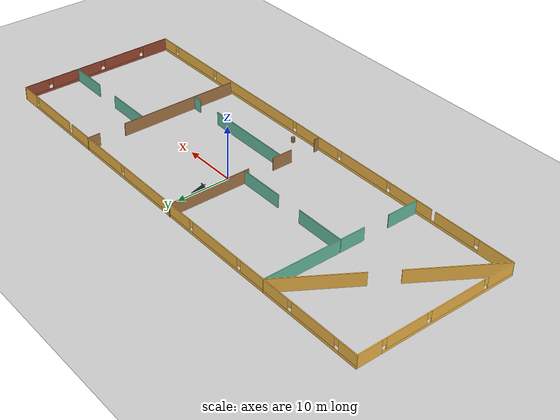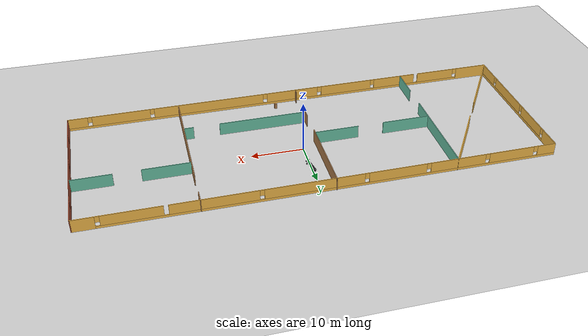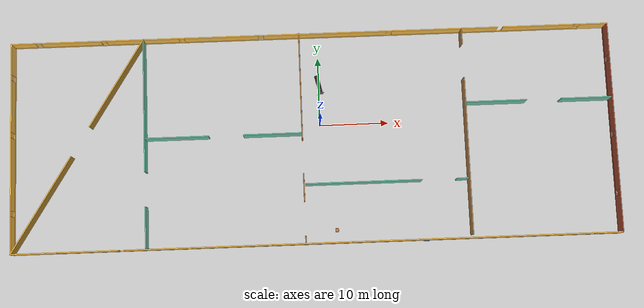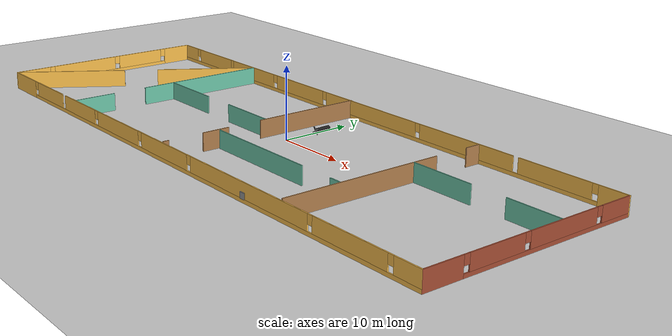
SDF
<sdf version="1.6">
 <world name="default">
  <model name="ground_plane">
   <static>1</static>
   <link name="link">
    <collision name="collision">
     <geometry><plane><normal>0 0 1</normal><size>100 100</size></plane></geometry>
     <surface><friction><ode><mu>100</mu><mu2>50</mu2></ode></friction></surface>
    </collision>
    <visual name="visual">
     <cast_shadows>0</cast_shadows>
     <geometry><plane><normal>0 0 1</normal><size>100 100</size></plane></geometry>
     <material>
      <script><uri>file://media/materials/scripts/gazebo.material</uri><name>Gazebo/Grey</name></script>
     </material>
    </visual>
   </link>
  </model>
  <model name="Building_0">
   <pose>-1.0762 -1.9803 0 0 -0 0</pose>
   <link name="Wall_0">
    <pose>-43.6608 -0.039593 0 0 -0 -1.5708</pose>
    <visual name="Wall_0_Visual_0">
     <pose>-13.0828 0 1.25 0 -0 0</pose>
     <geometry><box><size>4.5844 0.15 2.5</size></box></geometry>
     <material>
      <script><uri>file://media/materials/scripts/gazebo.material</uri><name>Gazebo/Grey</name></script>
      <ambient>1 0.764706 0.305882 1</ambient>
     </material>
     <meta><layer>0</layer></meta>
    </visual>
    <collision name="Wall_0_Collision_0">
     <geometry><box><size>4.5844 0.15 2.5</size></box></geometry>
     <pose>-13.0828 0 1.25 0 -0 0</pose>
    </collision>
    <visual name="Wall_0_Visual_1">
     <pose>2.2922 0 0.25 0 -0 0</pose>
     <geometry><box><size>26.1656 0.15 0.5</size></box></geometry>
     <material>
      <script><uri>file://media/materials/scripts/gazebo.material</uri><name>Gazebo/Grey</name></script>
      <ambient>1 0.764706 0.305882 1</ambient>
     </material>
     <meta><layer>0</layer></meta>
    </visual>
    <collision name="Wall_0_Collision_1">
     <geometry><box><size>26.1656 0.15 0.5</size></box></geometry>
     <pose>2.2922 0 0.25 0 -0 0</pose>
    </collision>
    <visual name="Wall_0_Visual_2">
     <pose>-6.1399 0 1.5 0 -0 0</pose>
     <geometry><box><size>7.7014 0.15 2</size></box></geometry>
     <material>
      <script><uri>file://media/materials/scripts/gazebo.material</uri><name>Gazebo/Grey</name></script>
      <ambient>1 0.764706 0.305882 1</ambient>
     </material>
     <meta><layer>0</layer></meta>
    </visual>
    <collision name="Wall_0_Collision_2">
     <geometry><box><size>7.7014 0.15 2</size></box></geometry>
     <pose>-6.1399 0 1.5 0 -0 0</pose>
    </collision>
    <visual name="Wall_0_Visual_3">
     <pose>3.79701 0 1.5 0 -0 0</pose>
     <geometry><box><size>10.5724 0.15 2</size></box></geometry>
     <material>
      <script><uri>file://media/materials/scripts/gazebo.material</uri><name>Gazebo/Grey</name></script>
      <ambient>1 0.764706 0.305882 1</ambient>
     </material>
     <meta><layer>0</layer></meta>
    </visual>
    <collision name="Wall_0_Collision_3">
     <geometry><box><size>10.5724 0.15 2</size></box></geometry>
     <pose>3.79701 0 1.5 0 -0 0</pose>
    </collision>
    <visual name="Wall_0_Visual_4">
     <pose>12.6291 0 1.5 0 -0 0</pose>
     <geometry><box><size>5.49178 0.15 2</size></box></geometry>
     <material>
      <script><uri>file://media/materials/scripts/gazebo.material</uri><name>Gazebo/Grey</name></script>
      <ambient>1 0.764706 0.305882 1</ambient>
     </material>
     <meta><layer>0</layer></meta>
    </visual>
    <collision name="Wall_0_Collision_4">
     <geometry><box><size>5.49178 0.15 2</size></box></geometry>
     <pose>12.6291 0 1.5 0 -0 0</pose>
    </collision>
    <visual name="Wall_0_Visual_5">
     <pose>-10.3906 0 1.9 0 -0 0</pose>
     <geometry><box><size>0.8 0.15 1.2</size></box></geometry>
     <material>
      <script><uri>file://media/materials/scripts/gazebo.material</uri><name>Gazebo/Grey</name></script>
      <ambient>1 0.764706 0.305882 1</ambient>
     </material>
     <meta><layer>0</layer></meta>
    </visual>
    <collision name="Wall_0_Collision_5">
     <geometry><box><size>0.8 0.15 1.2</size></box></geometry>
     <pose>-10.3906 0 1.9 0 -0 0</pose>
    </collision>
    <visual name="Wall_0_Visual_6">
     <pose>-1.8892 0 1.9 0 -0 0</pose>
     <geometry><box><size>0.8 0.15 1.2</size></box></geometry>
     <material>
      <script><uri>file://media/materials/scripts/gazebo.material</uri><name>Gazebo/Grey</name></script>
      <ambient>1 0.764706 0.305882 1</ambient>
     </material>
     <meta><layer>0</layer></meta>
    </visual>
    <collision name="Wall_0_Collision_6">
     <geometry><box><size>0.8 0.15 1.2</size></box></geometry>
     <pose>-1.8892 0 1.9 0 -0 0</pose>
    </collision>
    <visual name="Wall_0_Visual_7">
     <pose>9.48322 0 1.9 0 -0 0</pose>
     <geometry><box><size>0.8 0.15 1.2</size></box></geometry>
     <material>
      <script><uri>file://media/materials/scripts/gazebo.material</uri><name>Gazebo/Grey</name></script>
      <ambient>1 0.764706 0.305882 1</ambient>
     </material>
     <meta><layer>0</layer></meta>
    </visual>
    <collision name="Wall_0_Collision_7">
     <geometry><box><size>0.8 0.15 1.2</size></box></geometry>
     <pose>9.48322 0 1.9 0 -0 0</pose>
    </collision>
   </link>
   <link name="Wall_1">
    <pose>0.014212 -15.3396 0 0 -0 0</pose>
    <visual name="Wall_1_Visual_0">
     <pose>-40.4458 0 1.25 0 -0 0</pose>
     <geometry><box><size>6.6085 0.15 2.5</size></box></geometry>
     <material>
      <script><uri>file://media/materials/scripts/gazebo.material</uri><name>Gazebo/Grey</name></script>
      <ambient>1 0.764706 0.305882 1</ambient>
     </material>
     <meta><layer>0</layer></meta>
    </visual>
    <collision name="Wall_1_Collision_0">
     <geometry><box><size>6.6085 0.15 2.5</size></box></geometry>
     <pose>-40.4458 0 1.25 0 -0 0</pose>
    </collision>
    <visual name="Wall_1_Visual_1">
     <pose>3.30425 0 0.25 0 -0 0</pose>
     <geometry><box><size>80.8915 0.15 0.5</size></box></geometry>
     <material>
      <script><uri>file://media/materials/scripts/gazebo.material</uri><name>Gazebo/Grey</name></script>
      <ambient>1 0.764706 0.305882 1</ambient>
     </material>
     <meta><layer>0</layer></meta>
    </visual>
    <collision name="Wall_1_Collision_1">
     <geometry><box><size>80.8915 0.15 0.5</size></box></geometry>
     <pose>3.30425 0 0.25 0 -0 0</pose>
    </collision>
    <visual name="Wall_1_Visual_2">
     <pose>-32.3294 0 1.5 0 -0 0</pose>
     <geometry><box><size>8.02424 0.15 2</size></box></geometry>
     <material>
      <script><uri>file://media/materials/scripts/gazebo.material</uri><name>Gazebo/Grey</name></script>
      <ambient>1 0.764706 0.305882 1</ambient>
     </material>
     <meta><layer>0</layer></meta>
    </visual>
    <collision name="Wall_1_Collision_2">
     <geometry><box><size>8.02424 0.15 2</size></box></geometry>
     <pose>-32.3294 0 1.5 0 -0 0</pose>
    </collision>
    <visual name="Wall_1_Visual_3">
     <pose>-23.0747 0 1.5 0 -0 0</pose>
     <geometry><box><size>8.88514 0.15 2</size></box></geometry>
     <material>
      <script><uri>file://media/materials/scripts/gazebo.material</uri><name>Gazebo/Grey</name></script>
      <ambient>1 0.764706 0.305882 1</ambient>
     </material>
     <meta><layer>0</layer></meta>
    </visual>
    <collision name="Wall_1_Collision_3">
     <geometry><box><size>8.88514 0.15 2</size></box></geometry>
     <pose>-23.0747 0 1.5 0 -0 0</pose>
    </collision>
    <visual name="Wall_1_Visual_4">
     <pose>-12.4749 0 1.5 0 -0 0</pose>
     <geometry><box><size>10.7146 0.15 2</size></box></geometry>
     <material>
      <script><uri>file://media/materials/scripts/gazebo.material</uri><name>Gazebo/Grey</name></script>
      <ambient>1 0.764706 0.305882 1</ambient>
     </material>
     <meta><layer>0</layer></meta>
    </visual>
    <collision name="Wall_1_Collision_4">
     <geometry><box><size>10.7146 0.15 2</size></box></geometry>
     <pose>-12.4749 0 1.5 0 -0 0</pose>
    </collision>
    <visual name="Wall_1_Visual_5">
     <pose>-1.01411 0 1.5 0 -0 0</pose>
     <geometry><box><size>10.6069 0.15 2</size></box></geometry>
     <material>
      <script><uri>file://media/materials/scripts/gazebo.material</uri><name>Gazebo/Grey</name></script>
      <ambient>1 0.764706 0.305882 1</ambient>
     </material>
     <meta><layer>0</layer></meta>
    </visual>
    <collision name="Wall_1_Collision_5">
     <geometry><box><size>10.6069 0.15 2</size></box></geometry>
     <pose>-1.01411 0 1.5 0 -0 0</pose>
    </collision>
    <visual name="Wall_1_Visual_6">
     <pose>16.0963 0 1.5 0 -0 0</pose>
     <geometry><box><size>22.0139 0.15 2</size></box></geometry>
     <material>
      <script><uri>file://media/materials/scripts/gazebo.material</uri><name>Gazebo/Grey</name></script>
      <ambient>1 0.764706 0.305882 1</ambient>
     </material>
     <meta><layer>0</layer></meta>
    </visual>
    <collision name="Wall_1_Collision_6">
     <geometry><box><size>22.0139 0.15 2</size></box></geometry>
     <pose>16.0963 0 1.5 0 -0 0</pose>
    </collision>
    <visual name="Wall_1_Visual_7">
     <pose>33.5296 0 1.5 0 -0 0</pose>
     <geometry><box><size>11.2526 0.15 2</size></box></geometry>
     <material>
      <script><uri>file://media/materials/scripts/gazebo.material</uri><name>Gazebo/Grey</name></script>
      <ambient>1 0.764706 0.305882 1</ambient>
     </material>
     <meta><layer>0</layer></meta>
    </visual>
    <collision name="Wall_1_Collision_7">
     <geometry><box><size>11.2526 0.15 2</size></box></geometry>
     <pose>33.5296 0 1.5 0 -0 0</pose>
    </collision>
    <visual name="Wall_1_Visual_8">
     <pose>41.8529 0 1.5 0 -0 0</pose>
     <geometry><box><size>3.79414 0.15 2</size></box></geometry>
     <material>
      <script><uri>file://media/materials/scripts/gazebo.material</uri><name>Gazebo/Grey</name></script>
      <ambient>1 0.764706 0.305882 1</ambient>
     </material>
     <meta><layer>0</layer></meta>
    </visual>
    <collision name="Wall_1_Collision_8">
     <geometry><box><size>3.79414 0.15 2</size></box></geometry>
     <pose>41.8529 0 1.5 0 -0 0</pose>
    </collision>
    <visual name="Wall_1_Visual_9">
     <pose>-36.7415 0 1.9 0 -0 0</pose>
     <geometry><box><size>0.8 0.15 1.2</size></box></geometry>
     <material>
      <script><uri>file://media/materials/scripts/gazebo.material</uri><name>Gazebo/Grey</name></script>
      <ambient>1 0.764706 0.305882 1</ambient>
     </material>
     <meta><layer>0</layer></meta>
    </visual>
    <collision name="Wall_1_Collision_9">
     <geometry><box><size>0.8 0.15 1.2</size></box></geometry>
     <pose>-36.7415 0 1.9 0 -0 0</pose>
    </collision>
    <visual name="Wall_1_Visual_10">
     <pose>-28.3173 0 1.9 0 -0 0</pose>
     <geometry><box><size>0.001 0.15 1.2</size></box></geometry>
     <material>
      <script><uri>file://media/materials/scripts/gazebo.material</uri><name>Gazebo/Grey</name></script>
      <ambient>1 0.764706 0.305882 1</ambient>
     </material>
     <meta><layer>0</layer></meta>
    </visual>
    <collision name="Wall_1_Collision_10">
     <geometry><box><size>0.001 0.15 1.2</size></box></geometry>
     <pose>-28.3173 0 1.9 0 -0 0</pose>
    </collision>
    <visual name="Wall_1_Visual_11">
     <pose>-18.2321 0 1.9 0 -0 0</pose>
     <geometry><box><size>0.8 0.15 1.2</size></box></geometry>
     <material>
      <script><uri>file://media/materials/scripts/gazebo.material</uri><name>Gazebo/Grey</name></script>
      <ambient>1 0.764706 0.305882 1</ambient>
     </material>
     <meta><layer>0</layer></meta>
    </visual>
    <collision name="Wall_1_Collision_11">
     <geometry><box><size>0.8 0.15 1.2</size></box></geometry>
     <pose>-18.2321 0 1.9 0 -0 0</pose>
    </collision>
    <visual name="Wall_1_Visual_12">
     <pose>-6.71758 0 1.9 0 -0 0</pose>
     <geometry><box><size>0.8 0.15 1.2</size></box></geometry>
     <material>
      <script><uri>file://media/materials/scripts/gazebo.material</uri><name>Gazebo/Grey</name></script>
      <ambient>1 0.764706 0.305882 1</ambient>
     </material>
     <meta><layer>0</layer></meta>
    </visual>
    <collision name="Wall_1_Collision_12">
     <geometry><box><size>0.8 0.15 1.2</size></box></geometry>
     <pose>-6.71758 0 1.9 0 -0 0</pose>
    </collision>
    <visual name="Wall_1_Visual_13">
     <pose>4.68936 0 1.9 0 -0 0</pose>
     <geometry><box><size>0.8 0.15 1.2</size></box></geometry>
     <material>
      <script><uri>file://media/materials/scripts/gazebo.material</uri><name>Gazebo/Grey</name></script>
      <ambient>1 0.764706 0.305882 1</ambient>
     </material>
     <meta><layer>0</layer></meta>
    </visual>
    <collision name="Wall_1_Collision_13">
     <geometry><box><size>0.8 0.15 1.2</size></box></geometry>
     <pose>4.68936 0 1.9 0 -0 0</pose>
    </collision>
    <visual name="Wall_1_Visual_14">
     <pose>27.5032 0 1.9 0 -0 0</pose>
     <geometry><box><size>0.8 0.15 1.2</size></box></geometry>
     <material>
      <script><uri>file://media/materials/scripts/gazebo.material</uri><name>Gazebo/Grey</name></script>
      <ambient>1 0.764706 0.305882 1</ambient>
     </material>
     <meta><layer>0</layer></meta>
    </visual>
    <collision name="Wall_1_Collision_14">
     <geometry><box><size>0.8 0.15 1.2</size></box></geometry>
     <pose>27.5032 0 1.9 0 -0 0</pose>
    </collision>
    <visual name="Wall_1_Visual_15">
     <pose>39.5559 0 1.9 0 -0 0</pose>
     <geometry><box><size>0.8 0.15 1.2</size></box></geometry>
     <material>
      <script><uri>file://media/materials/scripts/gazebo.material</uri><name>Gazebo/Grey</name></script>
      <ambient>1 0.764706 0.305882 1</ambient>
     </material>
     <meta><layer>0</layer></meta>
    </visual>
    <collision name="Wall_1_Collision_15">
     <geometry><box><size>0.8 0.15 1.2</size></box></geometry>
     <pose>39.5559 0 1.9 0 -0 0</pose>
    </collision>
   </link>
   <link name="Wall_11">
    <pose>32.9634 4.28392 0 0 -0 0</pose>
    <visual name="Wall_11_Visual_0">
     <pose>-6.17941 0 1.25 0 -0 0</pose>
     <geometry><box><size>8.89118 0.15 2.5</size></box></geometry>
     <material>
      <script><uri>file://media/materials/scripts/gazebo.material</uri><name>Gazebo/Grey</name></script>
      <ambient>0.435294 0.796078 0.67451 1</ambient>
     </material>
     <meta><layer>0</layer></meta>
    </visual>
    <collision name="Wall_11_Collision_0">
     <geometry><box><size>8.89118 0.15 2.5</size></box></geometry>
     <pose>-6.17941 0 1.25 0 -0 0</pose>
    </collision>
    <visual name="Wall_11_Visual_1">
     <pose>6.94559 0 1.25 0 -0 0</pose>
     <geometry><box><size>7.35882 0.15 2.5</size></box></geometry>
     <material>
      <script><uri>file://media/materials/scripts/gazebo.material</uri><name>Gazebo/Grey</name></script>
      <ambient>0.435294 0.796078 0.67451 1</ambient>
     </material>
     <meta><layer>0</layer></meta>
    </visual>
    <collision name="Wall_11_Collision_1">
     <geometry><box><size>7.35882 0.15 2.5</size></box></geometry>
     <pose>6.94559 0 1.25 0 -0 0</pose>
    </collision>
   </link>
   <link name="Wall_13">
    <pose>10.4155 -6.80018 0 0 -0 3.14159</pose>
    <visual name="Wall_13_Visual_0">
     <pose>-10.8926 0 1.25 0 -0 0</pose>
     <geometry><box><size>1.71481 0.15 2.5</size></box></geometry>
     <material>
      <script><uri>file://media/materials/scripts/gazebo.material</uri><name>Gazebo/Grey</name></script>
      <ambient>0.435294 0.796078 0.67451 1</ambient>
     </material>
     <meta><layer>0</layer></meta>
    </visual>
    <collision name="Wall_13_Collision_0">
     <geometry><box><size>1.71481 0.15 2.5</size></box></geometry>
     <pose>-10.8926 0 1.25 0 -0 0</pose>
    </collision>
    <visual name="Wall_13_Visual_1">
     <pose>3.3574 0 1.25 0 -0 0</pose>
     <geometry><box><size>16.7852 0.15 2.5</size></box></geometry>
     <material>
      <script><uri>file://media/materials/scripts/gazebo.material</uri><name>Gazebo/Grey</name></script>
      <ambient>0.435294 0.796078 0.67451 1</ambient>
     </material>
     <meta><layer>0</layer></meta>
    </visual>
    <collision name="Wall_13_Collision_1">
     <geometry><box><size>16.7852 0.15 2.5</size></box></geometry>
     <pose>3.3574 0 1.25 0 -0 0</pose>
    </collision>
   </link>
   <link name="Wall_15">
    <pose>-13.0981 0.625087 0 0 -0 0</pose>
    <visual name="Wall_15_Visual_0">
     <pose>-6.69571 0 1.25 0 -0 0</pose>
     <geometry><box><size>9.35858 0.15 2.5</size></box></geometry>
     <material>
      <script><uri>file://media/materials/scripts/gazebo.material</uri><name>Gazebo/Grey</name></script>
      <ambient>0.435294 0.796078 0.67451 1</ambient>
     </material>
     <meta><layer>0</layer></meta>
    </visual>
    <collision name="Wall_15_Collision_0">
     <geometry><box><size>9.35858 0.15 2.5</size></box></geometry>
     <pose>-6.69571 0 1.25 0 -0 0</pose>
    </collision>
    <visual name="Wall_15_Visual_1">
     <pose>7.17929 0 1.25 0 -0 0</pose>
     <geometry><box><size>8.39142 0.15 2.5</size></box></geometry>
     <material>
      <script><uri>file://media/materials/scripts/gazebo.material</uri><name>Gazebo/Grey</name></script>
      <ambient>0.435294 0.796078 0.67451 1</ambient>
     </material>
     <meta><layer>0</layer></meta>
    </visual>
    <collision name="Wall_15_Collision_1">
     <geometry><box><size>8.39142 0.15 2.5</size></box></geometry>
     <pose>7.17929 0 1.25 0 -0 0</pose>
    </collision>
   </link>
   <link name="Wall_17">
    <pose>-34.0295 -0.039593 0 0 -0 1.00897</pose>
    <visual name="Wall_17_Visual_0">
     <pose>-9.99099 0 1.25 0 -0 0</pose>
     <geometry><box><size>16.3262 0.15 2.5</size></box></geometry>
     <material>
      <script><uri>file://media/materials/scripts/gazebo.material</uri><name>Gazebo/Grey</name></script>
      <ambient>1 0.764706 0.305882 1</ambient>
     </material>
     <meta><layer>0</layer></meta>
    </visual>
    <collision name="Wall_17_Collision_0">
     <geometry><box><size>16.3262 0.15 2.5</size></box></geometry>
     <pose>-9.99099 0 1.25 0 -0 0</pose>
    </collision>
    <visual name="Wall_17_Visual_1">
     <pose>10.6631 0 1.25 0 -0 0</pose>
     <geometry><box><size>14.982 0.15 2.5</size></box></geometry>
     <material>
      <script><uri>file://media/materials/scripts/gazebo.material</uri><name>Gazebo/Grey</name></script>
      <ambient>1 0.764706 0.305882 1</ambient>
     </material>
     <meta><layer>0</layer></meta>
    </visual>
    <collision name="Wall_17_Collision_1">
     <geometry><box><size>14.982 0.15 2.5</size></box></geometry>
     <pose>10.6631 0 1.25 0 -0 0</pose>
    </collision>
   </link>
   <link name="Wall_2">
    <pose>43.6892 -0.039593 0 0 -0 1.5708</pose>
    <visual name="Wall_2_Visual_0">
     <pose>-12.6829 0 1.25 0 -0 0</pose>
     <geometry><box><size>5.38417 0.15 2.5</size></box></geometry>
     <material>
      <script><uri>file://media/materials/scripts/gazebo.material</uri><name>Gazebo/Bricks</name></script>
      <ambient>1 1 1 1</ambient>
     </material>
     <meta><layer>0</layer></meta>
    </visual>
    <collision name="Wall_2_Collision_0">
     <geometry><box><size>5.38417 0.15 2.5</size></box></geometry>
     <pose>-12.6829 0 1.25 0 -0 0</pose>
    </collision>
    <visual name="Wall_2_Visual_1">
     <pose>2.69209 0 0.25 0 -0 0</pose>
     <geometry><box><size>25.3658 0.15 0.5</size></box></geometry>
     <material>
      <script><uri>file://media/materials/scripts/gazebo.material</uri><name>Gazebo/Bricks</name></script>
      <ambient>1 1 1 1</ambient>
     </material>
     <meta><layer>0</layer></meta>
    </visual>
    <collision name="Wall_2_Collision_1">
     <geometry><box><size>25.3658 0.15 0.5</size></box></geometry>
     <pose>2.69209 0 0.25 0 -0 0</pose>
    </collision>
    <visual name="Wall_2_Visual_2">
     <pose>-5.28632 0 1.5 0 -0 0</pose>
     <geometry><box><size>7.80901 0.15 2</size></box></geometry>
     <material>
      <script><uri>file://media/materials/scripts/gazebo.material</uri><name>Gazebo/Bricks</name></script>
      <ambient>1 1 1 1</ambient>
     </material>
     <meta><layer>0</layer></meta>
    </visual>
    <collision name="Wall_2_Collision_2">
     <geometry><box><size>7.80901 0.15 2</size></box></geometry>
     <pose>-5.28632 0 1.5 0 -0 0</pose>
    </collision>
    <visual name="Wall_2_Visual_3">
     <pose>4.61404 0 1.5 0 -0 0</pose>
     <geometry><box><size>10.3917 0.15 2</size></box></geometry>
     <material>
      <script><uri>file://media/materials/scripts/gazebo.material</uri><name>Gazebo/Bricks</name></script>
      <ambient>1 1 1 1</ambient>
     </material>
     <meta><layer>0</layer></meta>
    </visual>
    <collision name="Wall_2_Collision_3">
     <geometry><box><size>10.3917 0.15 2</size></box></geometry>
     <pose>4.61404 0 1.5 0 -0 0</pose>
    </collision>
    <visual name="Wall_2_Visual_4">
     <pose>12.9924 0 1.5 0 -0 0</pose>
     <geometry><box><size>4.7651 0.15 2</size></box></geometry>
     <material>
      <script><uri>file://media/materials/scripts/gazebo.material</uri><name>Gazebo/Bricks</name></script>
      <ambient>1 1 1 1</ambient>
     </material>
     <meta><layer>0</layer></meta>
    </visual>
    <collision name="Wall_2_Collision_4">
     <geometry><box><size>4.7651 0.15 2</size></box></geometry>
     <pose>12.9924 0 1.5 0 -0 0</pose>
    </collision>
    <visual name="Wall_2_Visual_5">
     <pose>-9.59083 0 1.9 0 -0 0</pose>
     <geometry><box><size>0.8 0.15 1.2</size></box></geometry>
     <material>
      <script><uri>file://media/materials/scripts/gazebo.material</uri><name>Gazebo/Bricks</name></script>
      <ambient>1 1 1 1</ambient>
     </material>
     <meta><layer>0</layer></meta>
    </visual>
    <collision name="Wall_2_Collision_5">
     <geometry><box><size>0.8 0.15 1.2</size></box></geometry>
     <pose>-9.59083 0 1.9 0 -0 0</pose>
    </collision>
    <visual name="Wall_2_Visual_6">
     <pose>-0.981818 0 1.9 0 -0 0</pose>
     <geometry><box><size>0.8 0.15 1.2</size></box></geometry>
     <material>
      <script><uri>file://media/materials/scripts/gazebo.material</uri><name>Gazebo/Bricks</name></script>
      <ambient>1 1 1 1</ambient>
     </material>
     <meta><layer>0</layer></meta>
    </visual>
    <collision name="Wall_2_Collision_6">
     <geometry><box><size>0.8 0.15 1.2</size></box></geometry>
     <pose>-0.981818 0 1.9 0 -0 0</pose>
    </collision>
    <visual name="Wall_2_Visual_7">
     <pose>10.2099 0 1.9 0 -0 0</pose>
     <geometry><box><size>0.8 0.15 1.2</size></box></geometry>
     <material>
      <script><uri>file://media/materials/scripts/gazebo.material</uri><name>Gazebo/Bricks</name></script>
      <ambient>1 1 1 1</ambient>
     </material>
     <meta><layer>0</layer></meta>
    </visual>
    <collision name="Wall_2_Collision_7">
     <geometry><box><size>0.8 0.15 1.2</size></box></geometry>
     <pose>10.2099 0 1.9 0 -0 0</pose>
    </collision>
   </link>
   <link name="Wall_3">
    <pose>0.014212 15.2604 0 0 -0 3.14159</pose>
    <visual name="Wall_3_Visual_0">
     <pose>-41.7453 0 1.25 0 -0 0</pose>
     <geometry><box><size>4.00936 0.15 2.5</size></box></geometry>
     <material>
      <script><uri>file://media/materials/scripts/gazebo.material</uri><name>Gazebo/Grey</name></script>
      <ambient>1 0.764706 0.305882 1</ambient>
     </material>
     <meta><layer>0</layer></meta>
    </visual>
    <collision name="Wall_3_Collision_0">
     <geometry><box><size>4.00936 0.15 2.5</size></box></geometry>
     <pose>-41.7453 0 1.25 0 -0 0</pose>
    </collision>
    <visual name="Wall_3_Visual_1">
     <pose>2.00468 0 0.25 0 -0 0</pose>
     <geometry><box><size>83.4906 0.15 0.5</size></box></geometry>
     <material>
      <script><uri>file://media/materials/scripts/gazebo.material</uri><name>Gazebo/Grey</name></script>
      <ambient>1 0.764706 0.305882 1</ambient>
     </material>
     <meta><layer>0</layer></meta>
    </visual>
    <collision name="Wall_3_Collision_1">
     <geometry><box><size>83.4906 0.15 0.5</size></box></geometry>
     <pose>2.00468 0 0.25 0 -0 0</pose>
    </collision>
    <visual name="Wall_3_Visual_2">
     <pose>-33.691 0 1.5 0 -0 0</pose>
     <geometry><box><size>10.4993 0.15 2</size></box></geometry>
     <material>
      <script><uri>file://media/materials/scripts/gazebo.material</uri><name>Gazebo/Grey</name></script>
      <ambient>1 0.764706 0.305882 1</ambient>
     </material>
     <meta><layer>0</layer></meta>
    </visual>
    <collision name="Wall_3_Collision_2">
     <geometry><box><size>10.4993 0.15 2</size></box></geometry>
     <pose>-33.691 0 1.5 0 -0 0</pose>
    </collision>
    <visual name="Wall_3_Visual_3">
     <pose>-19.8627 0 1.5 0 -0 0</pose>
     <geometry><box><size>15.5571 0.15 2</size></box></geometry>
     <material>
      <script><uri>file://media/materials/scripts/gazebo.material</uri><name>Gazebo/Grey</name></script>
      <ambient>1 0.764706 0.305882 1</ambient>
     </material>
     <meta><layer>0</layer></meta>
    </visual>
    <collision name="Wall_3_Collision_3">
     <geometry><box><size>15.5571 0.15 2</size></box></geometry>
     <pose>-19.8627 0 1.5 0 -0 0</pose>
    </collision>
    <visual name="Wall_3_Visual_4">
     <pose>-2.25554 0 1.5 0 -0 0</pose>
     <geometry><box><size>18.0573 0.15 2</size></box></geometry>
     <material>
      <script><uri>file://media/materials/scripts/gazebo.material</uri><name>Gazebo/Grey</name></script>
      <ambient>1 0.764706 0.305882 1</ambient>
     </material>
     <meta><layer>0</layer></meta>
    </visual>
    <collision name="Wall_3_Collision_4">
     <geometry><box><size>18.0573 0.15 2</size></box></geometry>
     <pose>-2.25554 0 1.5 0 -0 0</pose>
    </collision>
    <visual name="Wall_3_Visual_5">
     <pose>12.9842 0 1.5 0 -0 0</pose>
     <geometry><box><size>10.8222 0.15 2</size></box></geometry>
     <material>
      <script><uri>file://media/materials/scripts/gazebo.material</uri><name>Gazebo/Grey</name></script>
      <ambient>1 0.764706 0.305882 1</ambient>
     </material>
     <meta><layer>0</layer></meta>
    </visual>
    <collision name="Wall_3_Collision_5">
     <geometry><box><size>10.8222 0.15 2</size></box></geometry>
     <pose>12.9842 0 1.5 0 -0 0</pose>
    </collision>
    <visual name="Wall_3_Visual_6">
     <pose>24.4987 0 1.5 0 -0 0</pose>
     <geometry><box><size>10.6069 0.15 2</size></box></geometry>
     <material>
      <script><uri>file://media/materials/scripts/gazebo.material</uri><name>Gazebo/Grey</name></script>
      <ambient>1 0.764706 0.305882 1</ambient>
     </material>
     <meta><layer>0</layer></meta>
    </visual>
    <collision name="Wall_3_Collision_6">
     <geometry><box><size>10.6069 0.15 2</size></box></geometry>
     <pose>24.4987 0 1.5 0 -0 0</pose>
    </collision>
    <visual name="Wall_3_Visual_7">
     <pose>34.991 0 1.5 0 -0 0</pose>
     <geometry><box><size>8.77752 0.15 2</size></box></geometry>
     <material>
      <script><uri>file://media/materials/scripts/gazebo.material</uri><name>Gazebo/Grey</name></script>
      <ambient>1 0.764706 0.305882 1</ambient>
     </material>
     <meta><layer>0</layer></meta>
    </visual>
    <collision name="Wall_3_Collision_7">
     <geometry><box><size>8.77752 0.15 2</size></box></geometry>
     <pose>34.991 0 1.5 0 -0 0</pose>
    </collision>
    <visual name="Wall_3_Visual_8">
     <pose>41.9649 0 1.5 0 -0 0</pose>
     <geometry><box><size>3.57027 0.15 2</size></box></geometry>
     <material>
      <script><uri>file://media/materials/scripts/gazebo.material</uri><name>Gazebo/Grey</name></script>
      <ambient>1 0.764706 0.305882 1</ambient>
     </material>
     <meta><layer>0</layer></meta>
    </visual>
    <collision name="Wall_3_Collision_8">
     <geometry><box><size>3.57027 0.15 2</size></box></geometry>
     <pose>41.9649 0 1.5 0 -0 0</pose>
    </collision>
    <visual name="Wall_3_Visual_9">
     <pose>-39.3406 0 1.9 0 -0 0</pose>
     <geometry><box><size>0.8 0.15 1.2</size></box></geometry>
     <material>
      <script><uri>file://media/materials/scripts/gazebo.material</uri><name>Gazebo/Grey</name></script>
      <ambient>1 0.764706 0.305882 1</ambient>
     </material>
     <meta><layer>0</layer></meta>
    </visual>
    <collision name="Wall_3_Collision_9">
     <geometry><box><size>0.8 0.15 1.2</size></box></geometry>
     <pose>-39.3406 0 1.9 0 -0 0</pose>
    </collision>
    <visual name="Wall_3_Visual_10">
     <pose>-28.4413 0 1.9 0 -0 0</pose>
     <geometry><box><size>0.001 0.15 1.2</size></box></geometry>
     <material>
      <script><uri>file://media/materials/scripts/gazebo.material</uri><name>Gazebo/Grey</name></script>
      <ambient>1 0.764706 0.305882 1</ambient>
     </material>
     <meta><layer>0</layer></meta>
    </visual>
    <collision name="Wall_3_Collision_10">
     <geometry><box><size>0.001 0.15 1.2</size></box></geometry>
     <pose>-28.4413 0 1.9 0 -0 0</pose>
    </collision>
    <visual name="Wall_3_Visual_11">
     <pose>-11.6842 0 1.9 0 -0 0</pose>
     <geometry><box><size>0.8 0.15 1.2</size></box></geometry>
     <material>
      <script><uri>file://media/materials/scripts/gazebo.material</uri><name>Gazebo/Grey</name></script>
      <ambient>1 0.764706 0.305882 1</ambient>
     </material>
     <meta><layer>0</layer></meta>
    </visual>
    <collision name="Wall_3_Collision_11">
     <geometry><box><size>0.8 0.15 1.2</size></box></geometry>
     <pose>-11.6842 0 1.9 0 -0 0</pose>
    </collision>
    <visual name="Wall_3_Visual_12">
     <pose>7.1731 0 1.9 0 -0 0</pose>
     <geometry><box><size>0.8 0.15 1.2</size></box></geometry>
     <material>
      <script><uri>file://media/materials/scripts/gazebo.material</uri><name>Gazebo/Grey</name></script>
      <ambient>1 0.764706 0.305882 1</ambient>
     </material>
     <meta><layer>0</layer></meta>
    </visual>
    <collision name="Wall_3_Collision_12">
     <geometry><box><size>0.8 0.15 1.2</size></box></geometry>
     <pose>7.1731 0 1.9 0 -0 0</pose>
    </collision>
    <visual name="Wall_3_Visual_13">
     <pose>18.7953 0 1.9 0 -0 0</pose>
     <geometry><box><size>0.8 0.15 1.2</size></box></geometry>
     <material>
      <script><uri>file://media/materials/scripts/gazebo.material</uri><name>Gazebo/Grey</name></script>
      <ambient>1 0.764706 0.305882 1</ambient>
     </material>
     <meta><layer>0</layer></meta>
    </visual>
    <collision name="Wall_3_Collision_13">
     <geometry><box><size>0.8 0.15 1.2</size></box></geometry>
     <pose>18.7953 0 1.9 0 -0 0</pose>
    </collision>
    <visual name="Wall_3_Visual_14">
     <pose>30.2022 0 1.9 0 -0 0</pose>
     <geometry><box><size>0.8 0.15 1.2</size></box></geometry>
     <material>
      <script><uri>file://media/materials/scripts/gazebo.material</uri><name>Gazebo/Grey</name></script>
      <ambient>1 0.764706 0.305882 1</ambient>
     </material>
     <meta><layer>0</layer></meta>
    </visual>
    <collision name="Wall_3_Collision_14">
     <geometry><box><size>0.8 0.15 1.2</size></box></geometry>
     <pose>30.2022 0 1.9 0 -0 0</pose>
    </collision>
    <visual name="Wall_3_Visual_15">
     <pose>39.7797 0 1.9 0 -0 0</pose>
     <geometry><box><size>0.8 0.15 1.2</size></box></geometry>
     <material>
      <script><uri>file://media/materials/scripts/gazebo.material</uri><name>Gazebo/Grey</name></script>
      <ambient>1 0.764706 0.305882 1</ambient>
     </material>
     <meta><layer>0</layer></meta>
    </visual>
    <collision name="Wall_3_Collision_15">
     <geometry><box><size>0.8 0.15 1.2</size></box></geometry>
     <pose>39.7797 0 1.9 0 -0 0</pose>
    </collision>
   </link>
   <link name="Wall_5">
    <pose>-24.3981 0.085406 0 0 -0 -1.5708</pose>
    <visual name="Wall_5_Visual_0">
     <pose>-5.47838 0 1.25 0 -0 0</pose>
     <geometry><box><size>19.5432 0.15 2.5</size></box></geometry>
     <material>
      <script><uri>file://media/materials/scripts/gazebo.material</uri><name>Gazebo/Grey</name></script>
      <ambient>0.435294 0.796078 0.67451 1</ambient>
     </material>
     <meta><layer>0</layer></meta>
    </visual>
    <collision name="Wall_5_Collision_0">
     <geometry><box><size>19.5432 0.15 2.5</size></box></geometry>
     <pose>-5.47838 0 1.25 0 -0 0</pose>
    </collision>
    <visual name="Wall_5_Visual_1">
     <pose>12.2716 0 1.25 0 -0 0</pose>
     <geometry><box><size>5.95676 0.15 2.5</size></box></geometry>
     <material>
      <script><uri>file://media/materials/scripts/gazebo.material</uri><name>Gazebo/Grey</name></script>
      <ambient>0.435294 0.796078 0.67451 1</ambient>
     </material>
     <meta><layer>0</layer></meta>
    </visual>
    <collision name="Wall_5_Collision_1">
     <geometry><box><size>5.95676 0.15 2.5</size></box></geometry>
     <pose>12.2716 0 1.25 0 -0 0</pose>
    </collision>
   </link>
   <link name="Wall_7">
    <pose>-1.58424 0.193019 0 0 -0 -1.5708</pose>
    <visual name="Wall_7_Visual_0">
     <pose>-7.3997 0 1.25 0 -0 0</pose>
     <geometry><box><size>15.7006 0.15 2.5</size></box></geometry>
     <material>
      <script><uri>file://media/materials/scripts/gazebo.material</uri><name>Gazebo/Wood</name></script>
      <ambient>1 1 1 1</ambient>
     </material>
     <meta><layer>0</layer></meta>
    </visual>
    <collision name="Wall_7_Collision_0">
     <geometry><box><size>15.7006 0.15 2.5</size></box></geometry>
     <pose>-7.3997 0 1.25 0 -0 0</pose>
    </collision>
    <visual name="Wall_7_Visual_1">
     <pose>7.42902 0 1.25 0 -0 0</pose>
     <geometry><box><size>3.95685 0.15 2.5</size></box></geometry>
     <material>
      <script><uri>file://media/materials/scripts/gazebo.material</uri><name>Gazebo/Wood</name></script>
      <ambient>1 1 1 1</ambient>
     </material>
     <meta><layer>0</layer></meta>
    </visual>
    <collision name="Wall_7_Collision_1">
     <geometry><box><size>3.95685 0.15 2.5</size></box></geometry>
     <pose>7.42902 0 1.25 0 -0 0</pose>
    </collision>
    <visual name="Wall_7_Visual_2">
     <pose>14.8287 0 1.25 0 -0 0</pose>
     <geometry><box><size>0.842552 0.15 2.5</size></box></geometry>
     <material>
      <script><uri>file://media/materials/scripts/gazebo.material</uri><name>Gazebo/Wood</name></script>
      <ambient>1 1 1 1</ambient>
     </material>
     <meta><layer>0</layer></meta>
    </visual>
    <collision name="Wall_7_Collision_2">
     <geometry><box><size>0.842552 0.15 2.5</size></box></geometry>
     <pose>14.8287 0 1.25 0 -0 0</pose>
    </collision>
   </link>
   <link name="Wall_9">
    <pose>22.3058 0.210406 0 0 -0 -1.5708</pose>
    <visual name="Wall_9_Visual_0">
     <pose>-13.9494 0 1.25 0 -0 0</pose>
     <geometry><box><size>2.35123 0.15 2.5</size></box></geometry>
     <material>
      <script><uri>file://media/materials/scripts/gazebo.material</uri><name>Gazebo/Wood</name></script>
      <ambient>1 1 1 1</ambient>
     </material>
     <meta><layer>0</layer></meta>
    </visual>
    <collision name="Wall_9_Collision_0">
     <geometry><box><size>2.35123 0.15 2.5</size></box></geometry>
     <pose>-13.9494 0 1.25 0 -0 0</pose>
    </collision>
    <visual name="Wall_9_Visual_1">
     <pose>3.67561 0 1.25 0 -0 0</pose>
     <geometry><box><size>22.8988 0.15 2.5</size></box></geometry>
     <material>
      <script><uri>file://media/materials/scripts/gazebo.material</uri><name>Gazebo/Wood</name></script>
      <ambient>1 1 1 1</ambient>
     </material>
     <meta><layer>0</layer></meta>
    </visual>
    <collision name="Wall_9_Collision_1">
     <geometry><box><size>22.8988 0.15 2.5</size></box></geometry>
     <pose>3.67561 0 1.25 0 -0 0</pose>
    </collision>
   </link>
   <link name="Window_13">
    <collision name="Window_13_Collision">
     <geometry><box><size>0.8 0.17 0.8</size></box></geometry>
     <pose>0 0 0.4 0 -0 0</pose>
    </collision>
    <visual name="Window_13_Visual">
     <pose>0 0 0.4 0 -0 0</pose>
     <geometry><box><size>0.8 0.17 0.8</size></box></geometry>
     <material>
      <script><uri>file://media/materials/scripts/gazebo.material</uri><name>Gazebo/Grey</name></script>
     </material>
    </visual>
    <pose>15.7877 -15.4415 0.5 0 -0 0</pose>
   </link>
   <static>1</static>
  </model>
  <model name="submarine_sinking">
   <pose>0.2267 5.03409 0.449056 1.49689 -0.551512 0.257312</pose>
   <link name="body">
    <pose>0 0 -1.07935 0 -0 0</pose>
    <inertial>
     <mass>1102.7</mass>
     <inertia><ixx>645.998</ixx><ixy>0</ixy><ixz>0</ixz><iyy>645.998</iyy><iyz>0</iyz><izz>49.6215</izz></inertia>
    </inertial>
    <visual name="body_visual">
     <geometry><cylinder><radius>0.3</radius><length>2.6</length></cylinder></geometry>
     <material>
      <script><uri>file://media/materials/scripts/gazebo.material</uri><name>Gazebo/Black</name></script>
     </material>
    </visual>
    <collision name="body_collision">
     <geometry><cylinder><radius>0.3</radius><length>2.6</length></cylinder></geometry>
    </collision>
    <visual name="spacer_visual">
     <pose>0 0 1.37855 0 -0 0</pose>
     <geometry><cylinder><radius>0.0933402</radius><length>0.127211</length></cylinder></geometry>
     <material>
      <script><uri>file://media/materials/scripts/gazebo.material</uri><name>Gazebo/Black</name></script>
     </material>
    </visual>
   </link>
   <link name="propeller">
    <pose>0 0 0.3455 3.14159 -0 0</pose>
    <inertial>
     <mass>25.2312</mass>
     <inertia><ixx>0.531907</ixx><ixy>0</ixy><ixz>0</ixz><iyy>0.531907</iyy><iyz>0</iyz><izz>1.0513</izz></inertia>
    </inertial>
    <visual name="blade1_visual">
     <pose>0.34334 0 0 0.785398 -0 0</pose>
     <geometry><box><size>0.5 0.154178 0.05455</size></box></geometry>
     <material>
      <script><uri>file://media/materials/scripts/gazebo.material</uri><name>Gazebo/Black</name></script>
     </material>
    </visual>
    <collision name="blade1_collision">
     <pose>0.34334 0 0 0.785398 -0 0</pose>
     <geometry><box><size>0.5 0.154178 0.05455</size></box></geometry>
    </collision>
    <visual name="blade2_visual">
     <pose>0 0.34334 0 0.785398 0 1.5708</pose>
     <geometry><box><size>0.5 0.154178 0.05455</size></box></geometry>
     <material>
      <script><uri>file://media/materials/scripts/gazebo.material</uri><name>Gazebo/Black</name></script>
     </material>
    </visual>
    <collision name="blade2_collision">
     <pose>0 0.34334 0 0.785398 0 1.5708</pose>
     <geometry><box><size>0.5 0.154178 0.05455</size></box></geometry>
    </collision>
    <visual name="blade3_visual">
     <pose>-0.34334 -0 0 -0.785398 0 0</pose>
     <geometry><box><size>0.5 0.154178 0.05455</size></box></geometry>
     <material>
      <script><uri>file://media/materials/scripts/gazebo.material</uri><name>Gazebo/Black</name></script>
     </material>
    </visual>
    <collision name="blade3_collision">
     <pose>-0.34334 -0 0 -0.785398 0 0</pose>
     <geometry><box><size>0.5 0.154178 0.05455</size></box></geometry>
    </collision>
    <visual name="blade4_visual">
     <pose>-0 -0.34334 0 -0.785398 -0 1.5708</pose>
     <geometry><box><size>0.5 0.154178 0.05455</size></box></geometry>
     <material>
      <script><uri>file://media/materials/scripts/gazebo.material</uri><name>Gazebo/Black</name></script>
     </material>
    </visual>
    <collision name="blade4_collision">
     <pose>-0 -0.34334 0 -0.785398 -0 1.5708</pose>
     <geometry><box><size>0.5 0.154178 0.05455</size></box></geometry>
    </collision>
   </link>
   <joint name="spinning_joint" type="revolute">
    <parent>body</parent>
    <child>propeller</child>
    <axis>
     <xyz>0 0 1</xyz>
     <use_parent_model_frame>1</use_parent_model_frame>
     <limit><lower>-1e+12</lower><upper>1e+12</upper><effort>-1</effort><velocity>-1</velocity></limit>
     <dynamics><spring_reference>0</spring_reference><spring_stiffness>0</spring_stiffness></dynamics>
    </axis>
   </joint>
   <plugin name="buoyancy" filename="libBuoyancyPlugin.so"><fluid_density>999.1026</fluid_density></plugin>
  </model>
  <model name="cabinet_clone_0">
   <static>1</static>
   <link name="cabinet_bottom_plate">
    <inertial>
     <pose>0 0 -1 0 -0 0</pose>
     <inertia><ixx>2.05</ixx><ixy>0</ixy><ixz>0</ixz><iyy>2.05</iyy><iyz>0</iyz><izz>2.05</izz></inertia>
     <mass>25</mass>
    </inertial>
    <collision name="cabinet_bottom_plate_geom">
     <pose>0 0 0.01 0 -0 0</pose>
     <geometry><box><size>0.45 0.45 0.02</size></box></geometry>
    </collision>
    <visual name="cabinet_bottom_plate_geom_visual">
     <pose>0 0 0.01 0 -0 0</pose>
     <geometry><box><size>0.45 0.45 0.02</size></box></geometry>
     <material>
      <script><uri>file://media/materials/scripts/gazebo.material</uri><name>Gazebo/Wood</name></script>
     </material>
    </visual>
    <collision name="cabinet_bottom_plate_geom_cabinet_back_plate">
     <pose>0.235 0 0.51 0 -0 0</pose>
     <geometry><box><size>0.02 0.45 1.02</size></box></geometry>
    </collision>
    <visual name="cabinet_bottom_plate_geom_cabinet_back_plate_visual">
     <pose>0.235 0 0.51 0 -0 0</pose>
     <geometry><box><size>0.02 0.45 1.02</size></box></geometry>
     <material>
      <script><uri>file://media/materials/scripts/gazebo.material</uri><name>Gazebo/Wood</name></script>
     </material>
    </visual>
    <collision name="cabinet_bottom_plate_geom_cabinet_left_plate">
     <pose>0 0.235 0.51 0 -0 0</pose>
     <geometry><box><size>0.45 0.02 1.02</size></box></geometry>
    </collision>
    <visual name="cabinet_bottom_plate_geom_cabinet_left_plate_visual">
     <pose>0 0.235 0.51 0 -0 0</pose>
     <geometry><box><size>0.45 0.02 1.02</size></box></geometry>
     <material>
      <script><uri>file://media/materials/scripts/gazebo.material</uri><name>Gazebo/Wood</name></script>
     </material>
    </visual>
    <collision name="cabinet_bottom_plate_geom_cabinet_middle_plate">
     <pose>0 0 0.51 0 -0 0</pose>
     <geometry><box><size>0.45 0.45 0.02</size></box></geometry>
    </collision>
    <visual name="cabinet_bottom_plate_geom_cabinet_middle_plate_visual">
     <pose>0 0 0.51 0 -0 0</pose>
     <geometry><box><size>0.45 0.45 0.02</size></box></geometry>
     <material>
      <script><uri>file://media/materials/scripts/gazebo.material</uri><name>Gazebo/Wood</name></script>
     </material>
    </visual>
    <collision name="cabinet_bottom_plate_geom_cabinet_right_plate">
     <pose>0 -0.235 0.51 0 -0 0</pose>
     <geometry><box><size>0.45 0.02 1.02</size></box></geometry>
    </collision>
    <visual name="cabinet_bottom_plate_geom_cabinet_right_plate_visual">
     <pose>0 -0.235 0.51 0 -0 0</pose>
     <geometry><box><size>0.45 0.02 1.02</size></box></geometry>
     <material>
      <script><uri>file://media/materials/scripts/gazebo.material</uri><name>Gazebo/Wood</name></script>
     </material>
    </visual>
    <collision name="cabinet_bottom_plate_geom_cabinet_top_plate">
     <pose>0 0 1.01 0 -0 0</pose>
     <geometry><box><size>0.45 0.45 0.02</size></box></geometry>
    </collision>
    <visual name="cabinet_bottom_plate_geom_cabinet_top_plate_visual">
     <pose>0 0 1.01 0 -0 0</pose>
     <geometry><box><size>0.45 0.45 0.02</size></box></geometry>
     <material>
      <script><uri>file://media/materials/scripts/gazebo.material</uri><name>Gazebo/Wood</name></script>
     </material>
    </visual>
   </link>
   <pose>1.87512 -15.4635 0 0 -0 0</pose>
  </model>
 </world>
</sdf>
